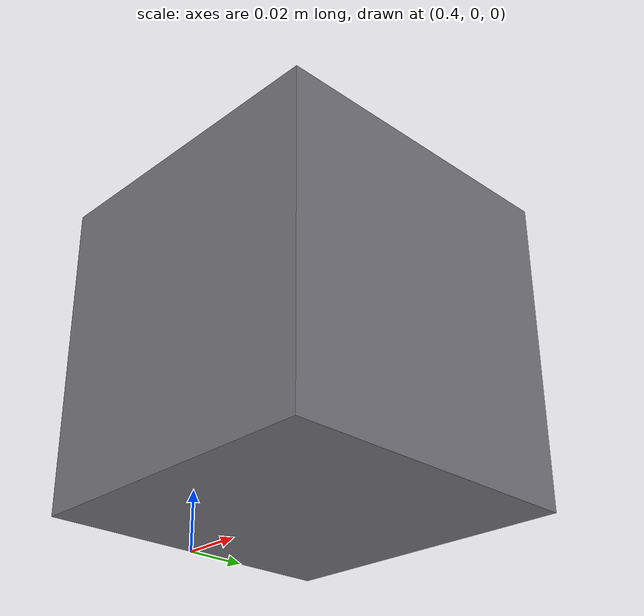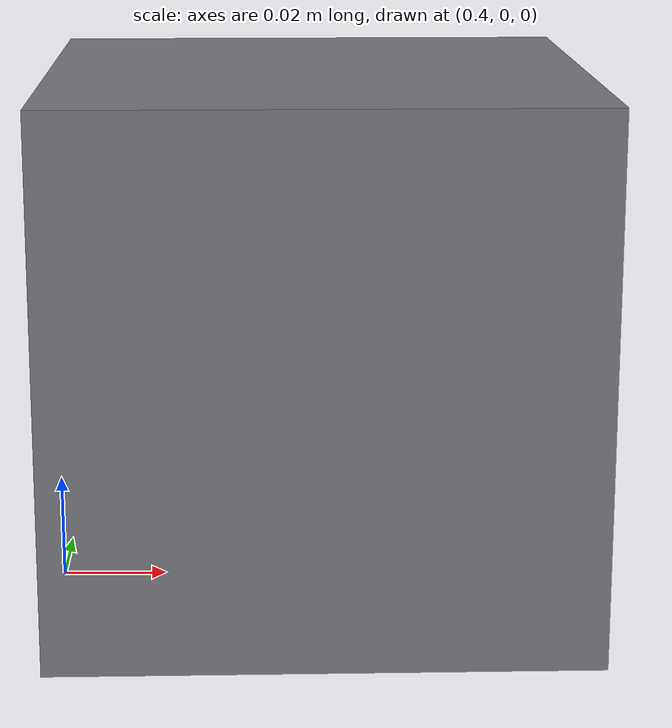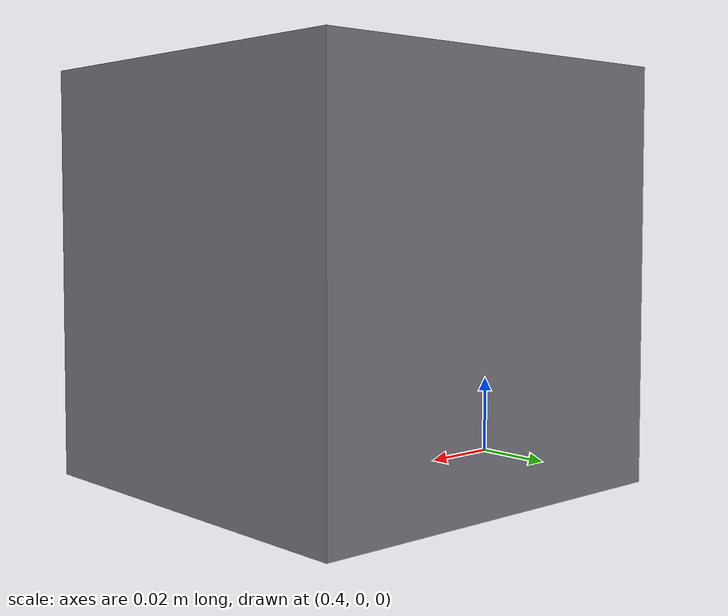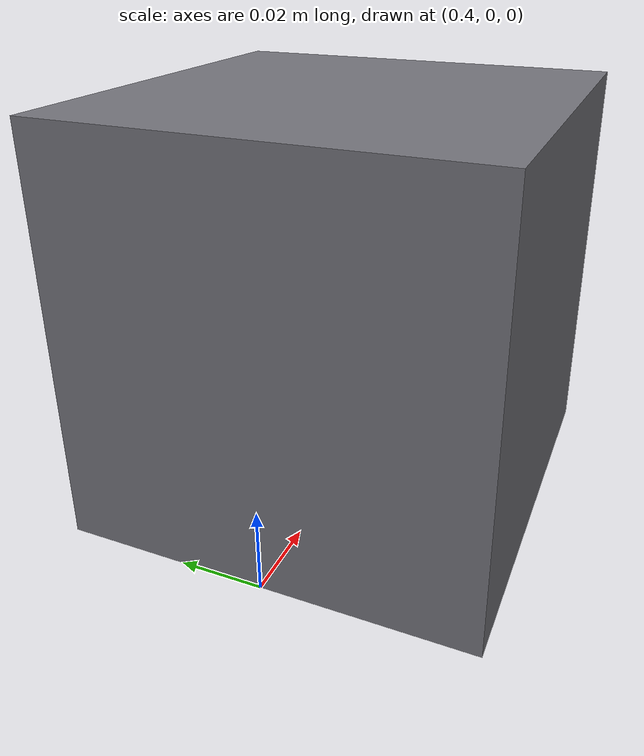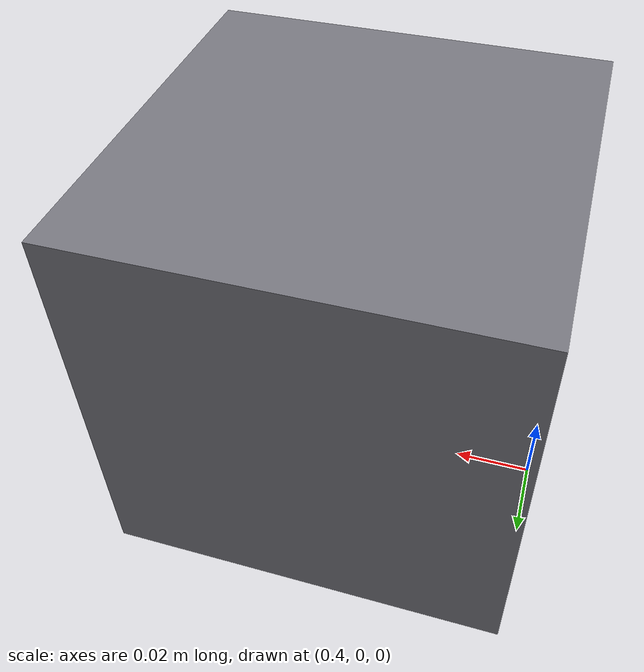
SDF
<?xml version="1.0"?>
<sdf version="1.7">
  <model name="oim_single_obstacle"><static>true</static>
    <link name="obs_box">
      <pose>0.44999999999999996 0.0 0.05 0 0 0</pose>
      <collision name="collision"><geometry><box><size>0.1 0.1 0.1</size></box></geometry>
        <surface><friction><ode><mu>0.8</mu><mu2>0.8</mu2></ode></friction></surface>
      </collision>
      <visual name="visual"><geometry><box><size>0.1 0.1 0.1</size></box></geometry>
        <material><diffuse>0.45 0.45 0.48 1</diffuse></material></visual>
    </link>
  </model>
</sdf>
